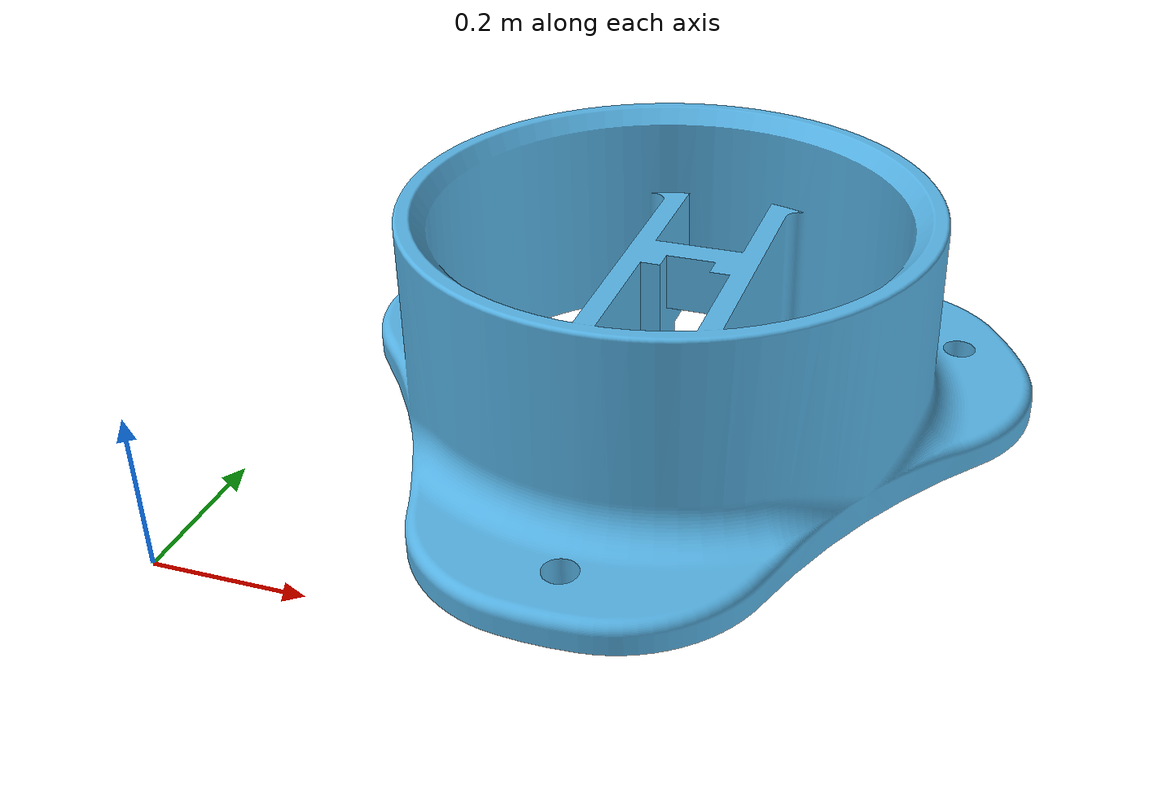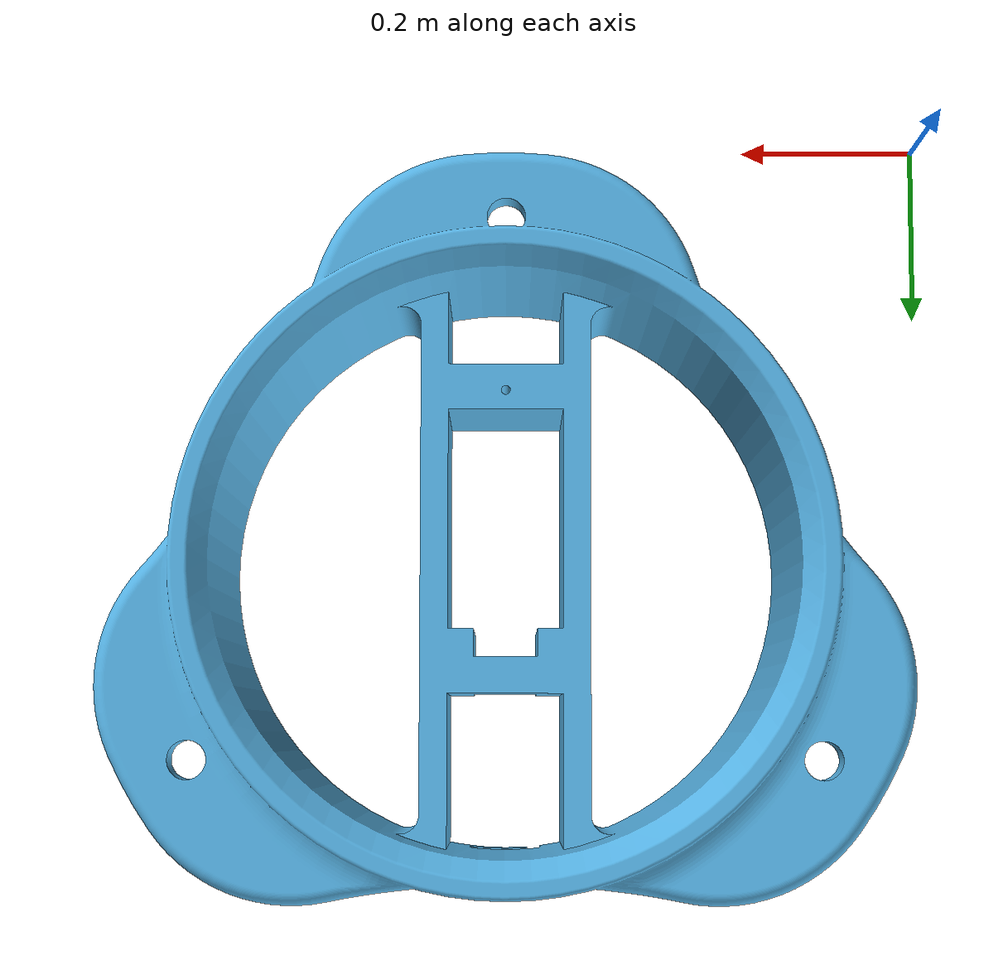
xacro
<?xml version="1.0"?>

<robot xmlns:xacro="http://www.ros.org/wiki/xacro" name="arduinobot">
    <link name="world"/>

    <link name="base_link">
        <visual>
            <origin xyz="0.0 0.0 0.0" rpy="0.0 0.0 0.0"/>

            <geometry>
                <mesh filename="package://arduinobot_description/meshes/basement.STL" scale="0.01 0.01 0.01"/>
            </geometry>
        </visual>
    </link>

    <joint name="virtual_joint" type="fixed">
        <parent link="world"/>
        <child link="base_link"/>
        <origin xyz="0.0 0.0 0.0" rpy="0.0 0.0 0.0"/>
    </joint>

</robot>
